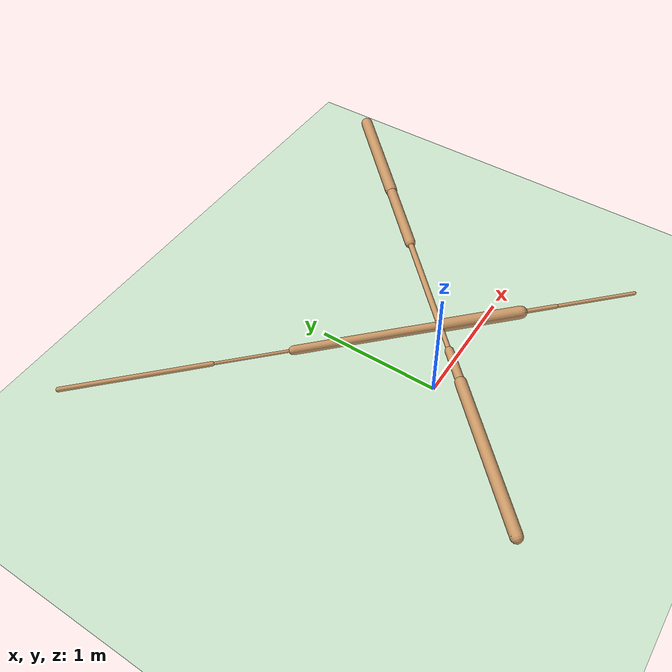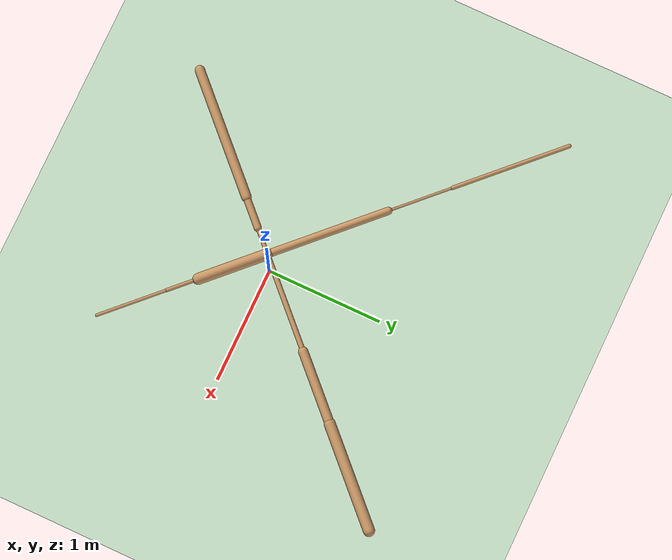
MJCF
<mujoco model="ant">
  <compiler angle="degree" coordinate="local" inertiafromgeom="true" />
  <option integrator="RK4" timestep="0.01" />
  <custom>
    <numeric data="0.0 0.0 0.55 1.0 0.0 0.0 0.0 0.0 1.0 0.0 -1.0 0.0 -1.0 0.0 1.0" name="init_qpos" />
  </custom>
  <default>
    <joint armature="1" damping="1" limited="true" />
    <geom conaffinity="0" condim="3" density="5.0" friction="1 0.5 0.5" margin="0.01" rgba="0.8 0.6 0.4 1" />
  </default>
  <asset>
    <texture builtin="gradient" height="100" rgb1="1 1 1" rgb2="0 0 0" type="skybox" width="100" />
    <texture builtin="flat" height="1278" mark="cross" markrgb="1 1 1" name="texgeom" random="0.01" rgb1="0.8 0.6 0.4" rgb2="0.8 0.6 0.4" type="cube" width="127" />
    <texture builtin="checker" height="100" name="texplane" rgb1="0 0 0" rgb2="0.8 0.8 0.8" type="2d" width="100" />
    <material name="MatPlane" reflectance="0.5" shininess="1" specular="1" texrepeat="60 60" texture="texplane" />
    <material name="geom" texture="texgeom" texuniform="true" />
  </asset>
  <worldbody>
    <light cutoff="100" diffuse="1 1 1" dir="-0 0 -1.3" directional="true" exponent="1" pos="0 0 1.3" specular=".1 .1 .1" />
    <geom conaffinity="1" condim="3" material="MatPlane" name="floor" pos="0 0 0" rgba="0.8 0.9 0.8 1" size="40 40 40" type="plane" />
    <body name="torso" pos="0 0 0.75">
      <camera name="track" mode="trackcom" pos="0 -11 5" xyaxes="1 0 0 0 0.5 1" />
      <geom name="torso_geom" pos="0 0 0" size="0.01534879021346569" type="sphere" />
      <joint armature="0" damping="0" limited="false" margin="0.01" name="root" pos="0 0 0" type="free" />
      <body name="front_left_leg" pos="0 0 0">
        <geom fromto="0 0 0 0.5930308103561401 0.5930308103561401 0" name="aux_1_geom" size="0.021796543151140213" type="capsule" />
        <body name="aux_1" pos="0.5930308103561401 0.5930308103561401 0">
          <joint axis="0 0 1" name="hip_1" pos="0.0 0.0 0.0" range="-30 30" type="hinge" />
          <geom fromto="0 0 0 0.43430212140083313 0.43430212140083313 0" name="left_leg_geom" size="0.040008895099163055" type="capsule" />
          <body name="left_leg_geom_aux" pos="0.43430212140083313 0.43430212140083313 0">
            <joint axis="-1 1 0" name="ankle_1" pos="0.0 0.0 0.0" range="30 70" type="hinge" />
            <geom fromto="0 0 0 0.6404728293418884 0.6404728293418884 0" name="left_ankle_geom" size="0.04715412110090256" type="capsule" />
          </body>
        </body>
      </body>
      <body name="front_right_leg" pos="0 0 0">
        <geom fromto="0 0 0 -0.7286825776100159 0.7286825776100159 0" name="aux_2_geom" size="0.03217809647321701" type="capsule" />
        <body name="aux_2" pos="-0.7286825776100159 0.7286825776100159 0">
          <joint axis="0 0 1" name="hip_2" pos="0.0 0.0 0.0" range="-30 30" type="hinge" />
          <geom fromto="0 0 0 -0.3882093131542206 0.3882093131542206 0" name="right_leg_geom" size="0.010854116640985012" type="capsule" />
          <body name="right_leg_geom_aux" pos="-0.3882093131542206 0.3882093131542206 0">
            <joint axis="1 1 0" name="ankle_2" pos="0.0 0.0 0.0" range="-70 -30" type="hinge" />
            <geom fromto="0 0 0 -0.7085529565811157 0.7085529565811157 0" name="right_ankle_geom" size="0.01695145294070244" type="capsule" />
          </body>
        </body>
      </body>
      <body name="back_leg" pos="0 0 0">
        <geom fromto="0 0 0 -0.16079312562942505 -0.16079312562942505 0" name="aux_3_geom" size="0.01709844172000885" type="capsule" />
        <body name="aux_3" pos="-0.16079312562942505 -0.16079312562942505 0">
          <joint axis="0 0 1" name="hip_3" pos="0.0 0.0 0.0" range="-30 30" type="hinge" />
          <geom fromto="0 0 0 -0.1900675892829895 -0.1900675892829895 0" name="back_leg_geom" size="0.03130564093589783" type="capsule" />
          <body name="back_leg_geom_aux" pos="-0.1900675892829895 -0.1900675892829895 0">
            <joint axis="-1 1 0" name="ankle_3" pos="0.0 0.0 0.0" range="-70 -30" type="hinge" />
            <geom fromto="0 0 0 -0.787279486656189 -0.787279486656189 0" name="third_ankle_geom" size="0.04142160713672638" type="capsule" />
          </body>
        </body>
      </body>
      <body name="right_back_leg" pos="0 0 0">
        <geom fromto="0 0 0 0.4150278866291046 -0.4150278866291046 0" name="aux_4_geom" size="0.0466318354010582" type="capsule" />
        <body name="aux_4" pos="0.4150278866291046 -0.4150278866291046 0">
          <joint axis="0 0 1" name="hip_4" pos="0.0 0.0 0.0" range="-30 30" type="hinge" />
          <geom fromto="0 0 0 0.18826088309288025 -0.18826088309288025 0" name="rightback_leg_geom" size="0.015717830508947372" type="capsule" />
          <body name="rightback_leg_geom_aux" pos="0.18826088309288025 -0.18826088309288025 0">
            <joint axis="1 1 0" name="ankle_4" pos="0.0 0.0 0.0" range="30 70" type="hinge" />
            <geom fromto="0 0 0 0.4184943437576294 -0.4184943437576294 0" name="fourth_ankle_geom" size="0.013277125544846058" type="capsule" />
          </body>
        </body>
      </body>
    </body>
  </worldbody>
  <actuator>
    <motor ctrllimited="true" ctrlrange="-1.0 1.0" joint="hip_4" gear="150" />
    <motor ctrllimited="true" ctrlrange="-1.0 1.0" joint="ankle_4" gear="150" />
    <motor ctrllimited="true" ctrlrange="-1.0 1.0" joint="hip_1" gear="150" />
    <motor ctrllimited="true" ctrlrange="-1.0 1.0" joint="ankle_1" gear="150" />
    <motor ctrllimited="true" ctrlrange="-1.0 1.0" joint="hip_2" gear="150" />
    <motor ctrllimited="true" ctrlrange="-1.0 1.0" joint="ankle_2" gear="150" />
    <motor ctrllimited="true" ctrlrange="-1.0 1.0" joint="hip_3" gear="150" />
    <motor ctrllimited="true" ctrlrange="-1.0 1.0" joint="ankle_3" gear="150" />
  </actuator>
</mujoco>
